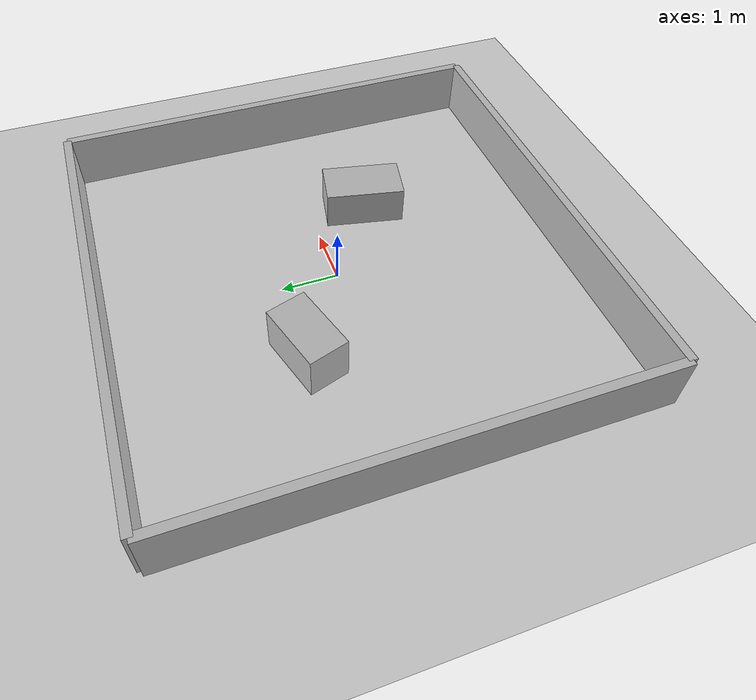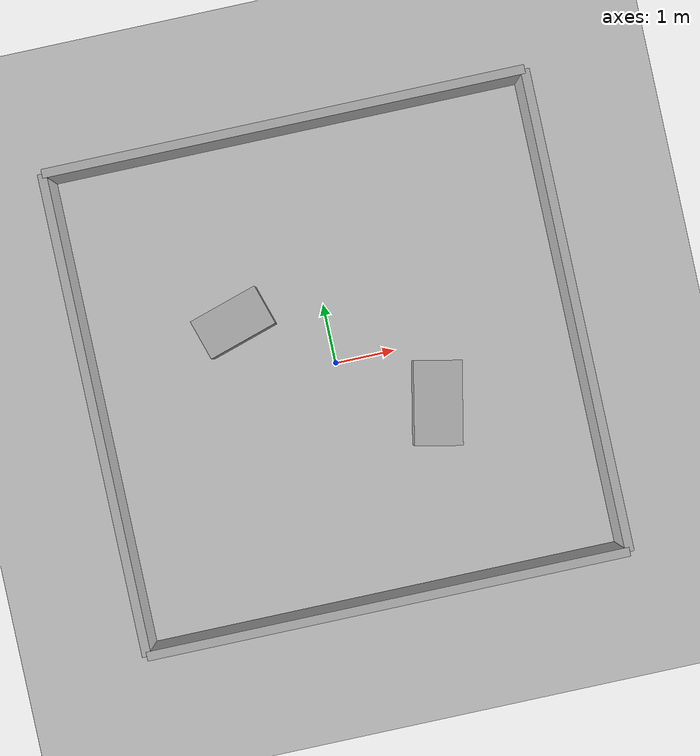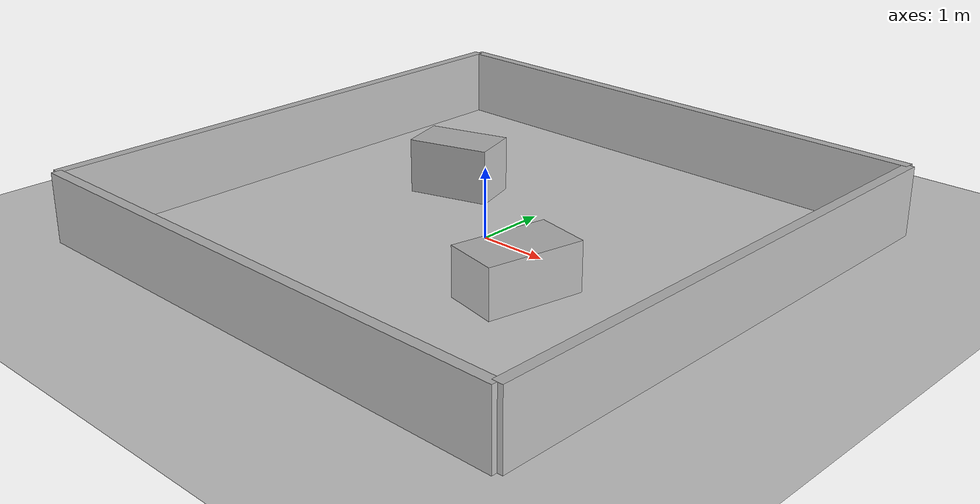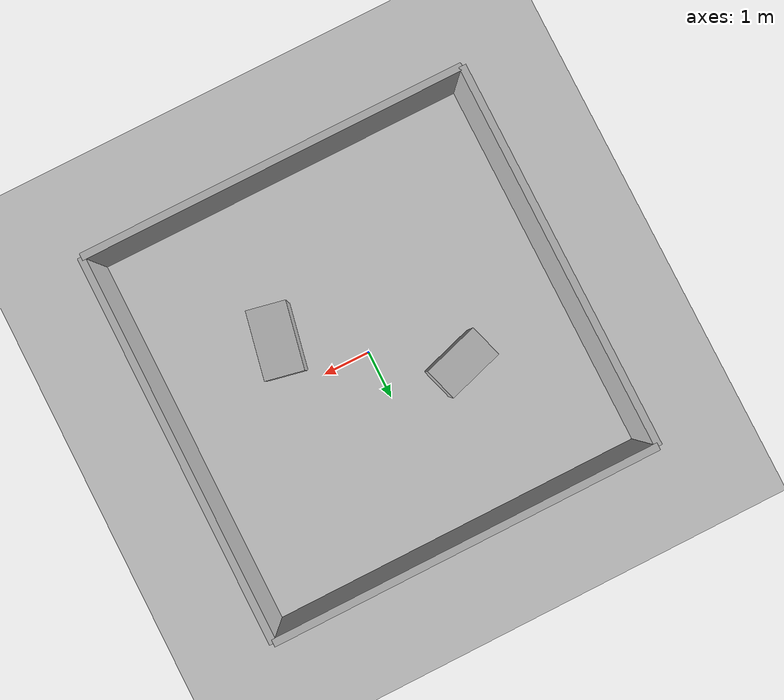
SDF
<?xml version="1.0"?>
<sdf version="1.6">
  <world name="obstacles_test">
    <include>
      <uri>model://sun</uri>
    </include>

    <include>
      <uri>model://ground_plane</uri>
    </include>

    <model name="north_wall">
      <static>true</static>
      <pose>0 4 0.5 0 0 0</pose>
      <link name="wall">
        <collision name="collision">
          <geometry><box><size>8 0.15 1</size></box></geometry>
        </collision>
        <visual name="visual">
          <geometry><box><size>8 0.15 1</size></box></geometry>
        </visual>
      </link>
    </model>

    <model name="south_wall">
      <static>true</static>
      <pose>0 -4 0.5 0 0 0</pose>
      <link name="wall">
        <collision name="collision">
          <geometry><box><size>8 0.15 1</size></box></geometry>
        </collision>
        <visual name="visual">
          <geometry><box><size>8 0.15 1</size></box></geometry>
        </visual>
      </link>
    </model>

    <model name="east_wall">
      <static>true</static>
      <pose>4 0 0.5 0 0 0</pose>
      <link name="wall">
        <collision name="collision">
          <geometry><box><size>0.15 8 1</size></box></geometry>
        </collision>
        <visual name="visual">
          <geometry><box><size>0.15 8 1</size></box></geometry>
        </visual>
      </link>
    </model>

    <model name="west_wall">
      <static>true</static>
      <pose>-4 0 0.5 0 0 0</pose>
      <link name="wall">
        <collision name="collision">
          <geometry><box><size>0.15 8 1</size></box></geometry>
        </collision>
        <visual name="visual">
          <geometry><box><size>0.15 8 1</size></box></geometry>
        </visual>
      </link>
    </model>

    <model name="obstacle_1">
      <static>true</static>
      <pose>-1.5 1 0.4 0 0 0.3</pose>
      <link name="box">
        <collision name="collision">
          <geometry><box><size>1.2 0.7 0.8</size></box></geometry>
        </collision>
        <visual name="visual">
          <geometry><box><size>1.2 0.7 0.8</size></box></geometry>
        </visual>
      </link>
    </model>

    <model name="obstacle_2">
      <static>true</static>
      <pose>1.5 -1 0.35 0 0 -0.2</pose>
      <link name="box">
        <collision name="collision">
          <geometry><box><size>0.8 1.4 0.7</size></box></geometry>
        </collision>
        <visual name="visual">
          <geometry><box><size>0.8 1.4 0.7</size></box></geometry>
        </visual>
      </link>
    </model>
  </world>
</sdf>
